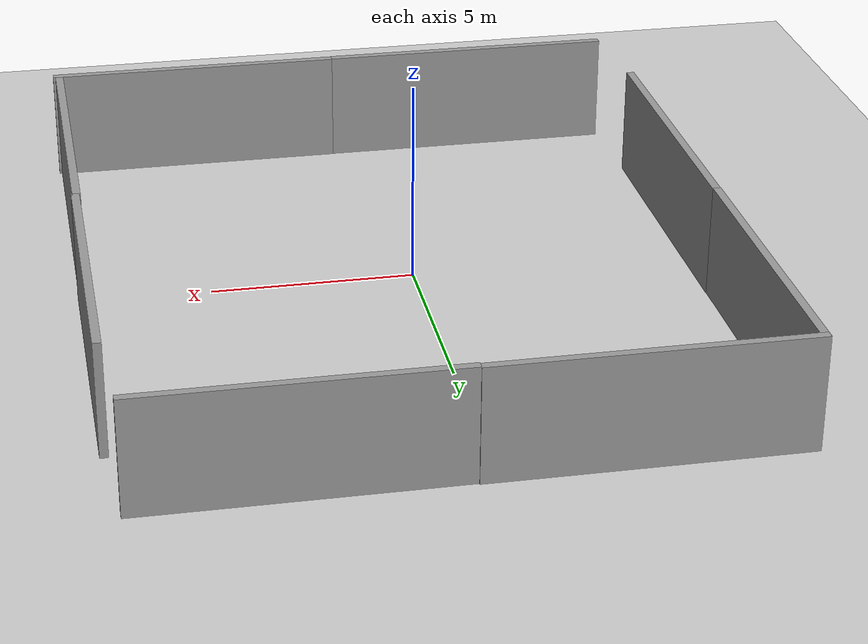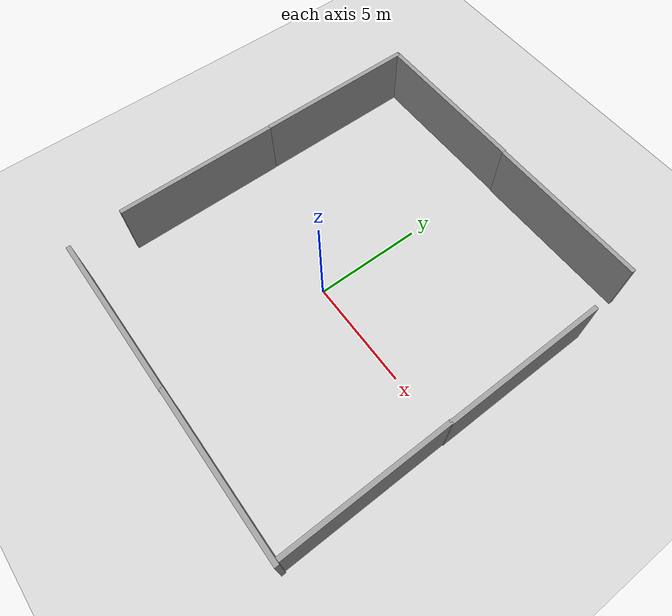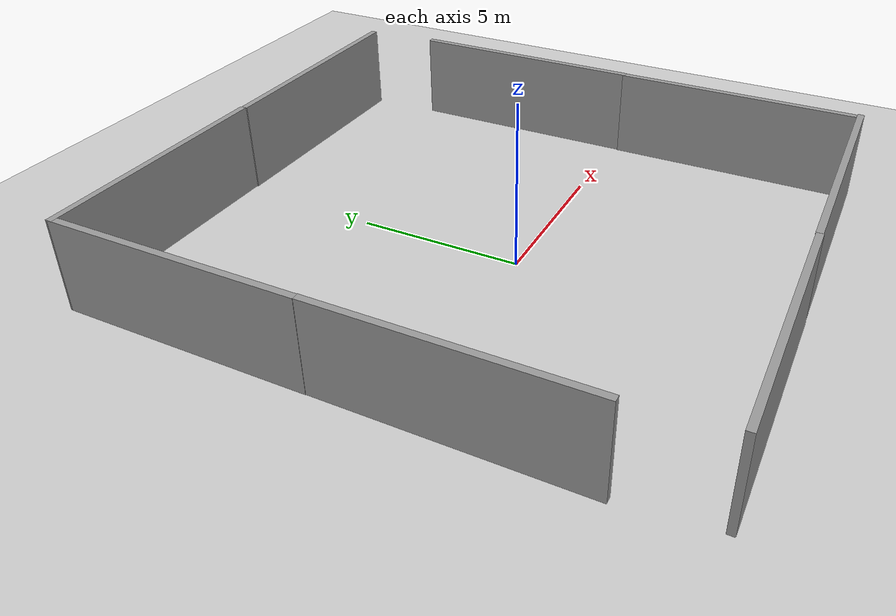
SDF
<sdf version="1.6">
 <world name="default">
  <light name="sun" type="directional">
   <pose>0 0 10 0 -0 0</pose>
   <diffuse>0.8 0.8 0.8 1</diffuse>
   <specular>0.1 0.1 0.1 1</specular>
   <attenuation>
    <range>1000</range>
    <constant>0.9</constant>
    <linear>0.01</linear>
    <quadratic>0.001</quadratic>
   </attenuation>
   <direction>-0.5 0.5 -1</direction>
  </light>
  <model name="ground_plane">
   <static>1</static>
   <link name="link">
    <collision name="collision">
     <geometry><plane><normal>0 0 1</normal><size>100 100</size></plane></geometry>
     <surface><friction><ode><mu>100</mu><mu2>50</mu2></ode></friction></surface>
    </collision>
    <visual name="visual">
     <cast_shadows>0</cast_shadows>
     <geometry><plane><normal>0 0 1</normal><size>100 100</size></plane></geometry>
     <material>
      <script><uri>file://media/materials/scripts/gazebo.material</uri><name>Gazebo/Grey</name></script>
     </material>
    </visual>
   </link>
  </model>
  <physics name="default_physics" default="0" type="ode">
   <max_step_size>0.01</max_step_size>
   <real_time_factor>1</real_time_factor>
   <real_time_update_rate>100</real_time_update_rate>
  </physics>
  <gravity>0 0 -9.8</gravity>
  <magnetic_field>6e-06 2.3e-05 -4.2e-05</magnetic_field>
  <atmosphere type="adiabatic"/>
  <scene><ambient>0.4 0.4 0.4 1</ambient><background>0.7 0.7 0.7 1</background><shadows>1</shadows></scene>
  <spherical_coordinates>
   <surface_model>EARTH_WGS84</surface_model>
   <latitude_deg>0</latitude_deg>
   <longitude_deg>0</longitude_deg>
   <elevation>0</elevation>
   <heading_deg>0</heading_deg>
  </spherical_coordinates>
  <model name="grey_wall">
   <static>1</static>
   <link name="link">
    <pose>0 0 1.4 0 -0 0</pose>
    <collision name="collision"><geometry><box><size>7.5 0.2 2.8</size></box></geometry></collision>
    <visual name="visual">
     <cast_shadows>0</cast_shadows>
     <geometry><box><size>7.5 0.2 2.8</size></box></geometry>
     <material>
      <script>
       <uri>model://grey_wall/materials/scripts</uri>
       <uri>model://grey_wall/materials/textures</uri>
       <name>vrc/grey_wall</name>
      </script>
     </material>
    </visual>
   </link>
   <pose>-3.34398 9.61637 0 0 -0 0</pose>
  </model>
  <model name="grey_wall_clone">
   <static>1</static>
   <link name="link">
    <pose>0 0 1.4 0 -0 0</pose>
    <collision name="collision"><geometry><box><size>7.5 0.2 2.8</size></box></geometry></collision>
    <visual name="visual">
     <cast_shadows>0</cast_shadows>
     <geometry><box><size>7.5 0.2 2.8</size></box></geometry>
     <material>
      <script>
       <uri>model://grey_wall/materials/scripts</uri>
       <uri>model://grey_wall/materials/textures</uri>
       <name>vrc/grey_wall</name>
      </script>
     </material>
    </visual>
   </link>
   <pose>4.15067 9.58036 0 0 -0 0</pose>
  </model>
  <model name="grey_wall_clone_0">
   <static>1</static>
   <link name="link">
    <pose>0 0 1.4 0 -0 0</pose>
    <collision name="collision"><geometry><box><size>7.5 0.2 2.8</size></box></geometry></collision>
    <visual name="visual">
     <cast_shadows>0</cast_shadows>
     <geometry><box><size>7.5 0.2 2.8</size></box></geometry>
     <material>
      <script>
       <uri>model://grey_wall/materials/scripts</uri>
       <uri>model://grey_wall/materials/textures</uri>
       <name>vrc/grey_wall</name>
      </script>
     </material>
    </visual>
   </link>
   <pose>-2.93091 -7.79849 0 0 -0 0</pose>
  </model>
  <model name="grey_wall_clone_1">
   <static>1</static>
   <link name="link">
    <pose>0 0 1.4 0 -0 0</pose>
    <collision name="collision"><geometry><box><size>7.5 0.2 2.8</size></box></geometry></collision>
    <visual name="visual">
     <cast_shadows>0</cast_shadows>
     <geometry><box><size>7.5 0.2 2.8</size></box></geometry>
     <material>
      <script>
       <uri>model://grey_wall/materials/scripts</uri>
       <uri>model://grey_wall/materials/textures</uri>
       <name>vrc/grey_wall</name>
      </script>
     </material>
    </visual>
   </link>
   <pose>4.54523 -7.78553 0 0 -0 0</pose>
  </model>
  <model name="grey_wall_clone_2">
   <static>1</static>
   <link name="link">
    <pose>0 0 1.4 0 -0 0</pose>
    <collision name="collision"><geometry><box><size>7.5 0.2 2.8</size></box></geometry></collision>
    <visual name="visual">
     <cast_shadows>0</cast_shadows>
     <geometry><box><size>7.5 0.2 2.8</size></box></geometry>
     <material>
      <script>
       <uri>model://grey_wall/materials/scripts</uri>
       <uri>model://grey_wall/materials/textures</uri>
       <name>vrc/grey_wall</name>
      </script>
     </material>
    </visual>
   </link>
   <pose>8.11497 -3.92536 0 0 -0 1.57591</pose>
  </model>
  <model name="grey_wall_clone_2_clone">
   <static>1</static>
   <link name="link">
    <pose>0 0 1.4 0 -0 0</pose>
    <collision name="collision"><geometry><box><size>7.5 0.2 2.8</size></box></geometry></collision>
    <visual name="visual">
     <cast_shadows>0</cast_shadows>
     <geometry><box><size>7.5 0.2 2.8</size></box></geometry>
     <material>
      <script>
       <uri>model://grey_wall/materials/scripts</uri>
       <uri>model://grey_wall/materials/textures</uri>
       <name>vrc/grey_wall</name>
      </script>
     </material>
    </visual>
   </link>
   <pose>8.10329 3.50315 0 0 -0 1.57591</pose>
  </model>
  <model name="grey_wall_clone_2_clone_0">
   <static>1</static>
   <link name="link">
    <pose>0 0 1.4 0 -0 0</pose>
    <collision name="collision"><geometry><box><size>7.5 0.2 2.8</size></box></geometry></collision>
    <visual name="visual">
     <cast_shadows>0</cast_shadows>
     <geometry><box><size>7.5 0.2 2.8</size></box></geometry>
     <material>
      <script>
       <uri>model://grey_wall/materials/scripts</uri>
       <uri>model://grey_wall/materials/textures</uri>
       <name>vrc/grey_wall</name>
      </script>
     </material>
    </visual>
   </link>
   <pose>-6.9781 5.91707 0 0 -0 1.57591</pose>
  </model>
  <model name="grey_wall_clone_2_clone_1">
   <static>1</static>
   <link name="link">
    <pose>0 0 1.4 0 -0 0</pose>
    <collision name="collision"><geometry><box><size>7.5 0.2 2.8</size></box></geometry></collision>
    <visual name="visual">
     <cast_shadows>0</cast_shadows>
     <geometry><box><size>7.5 0.2 2.8</size></box></geometry>
     <material>
      <script>
       <uri>model://grey_wall/materials/scripts</uri>
       <uri>model://grey_wall/materials/textures</uri>
       <name>vrc/grey_wall</name>
      </script>
     </material>
    </visual>
   </link>
   <pose>-6.92924 -1.57189 0 0 -0 1.57591</pose>
  </model>
 </world>
</sdf>
